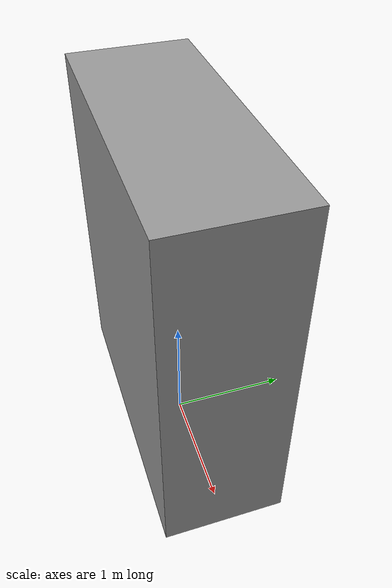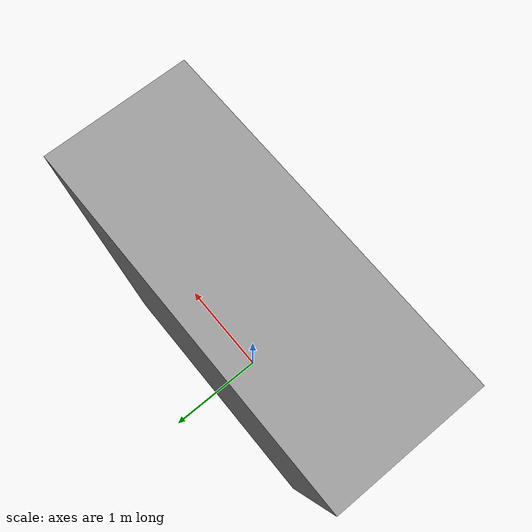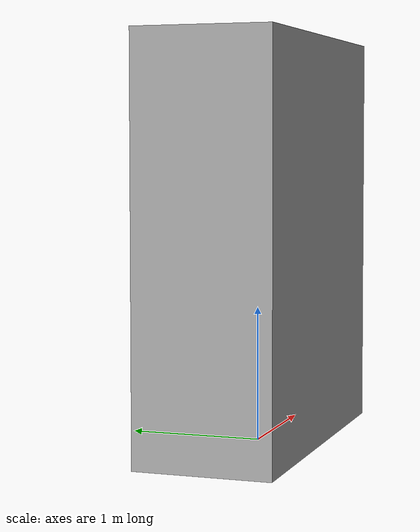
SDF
<?xml version="1.0" ?>
<sdf version="1.4">
    <model name="grey_brick_box_2x1x3">
        <static>true</static>
        <link name="chassis">
            <pose>0 0 1.5 0 0 0</pose>
            <collision name="collision">
                <geometry>
                    <box>
                        <size>3.0 1.0 3.0</size>
                    </box>
                </geometry>
            </collision>
            <visual name="visual">
                <geometry>
                    <mesh>
                        <uri>model://grey_brick_box_2x1x3/meshes/grey_brick_box2.dae</uri>
                        <scale>2.5 1.0 3.0</scale>
                    </mesh>
                </geometry>
                <material>
                  <script>
                    <uri>model://grey_brick_box_2x1x3/materials/scripts</uri>
                    <uri>model://grey_brick_box_2x1x3/materials/textures</uri>
                    <name>vrc/grey_brick_box2</name>
                  </script>
                </material>
            </visual>
        </link>
    </model>
</sdf>
